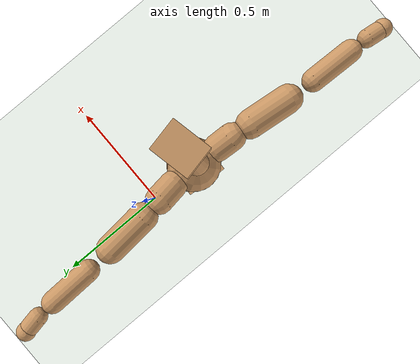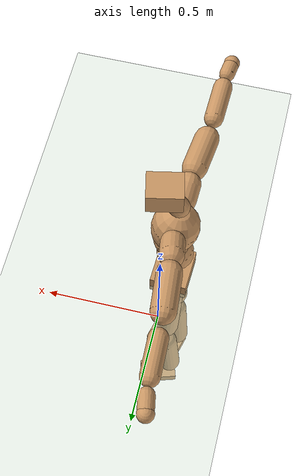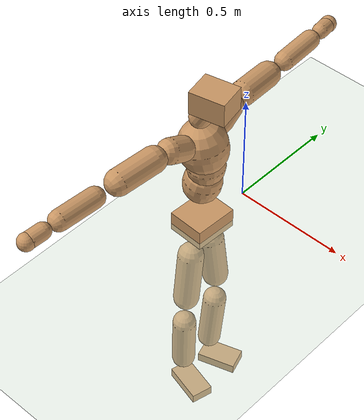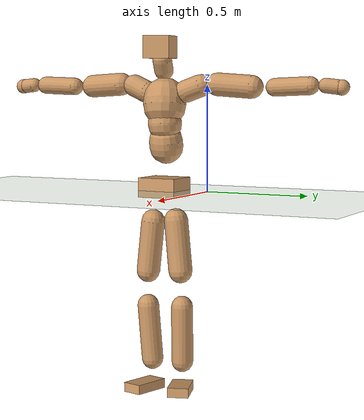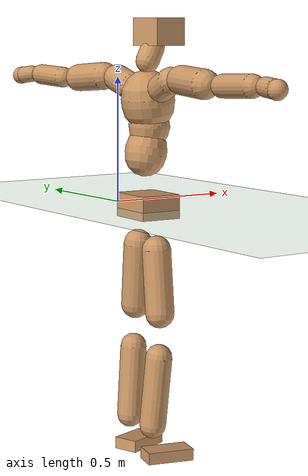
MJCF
<mujoco model="humanoid">
  <compiler coordinate="local" angle="radian"/>
  <default>
    <joint damping="0.0" armature="0.01" stiffness="0.0" limited="true"/>
    <geom conaffinity="1" condim="3" contype="7" margin="0.001" rgba="0.8 0.6 .4 1"/>
  </default>
  <asset>
    <texture type="skybox" builtin="gradient" rgb1=".4 .5 .6" rgb2="0 0 0" width="100" height="100"/>
    <texture builtin="flat" height="1278" mark="cross" markrgb="1 1 1" name="texgeom" random="0.01" rgb1="0.8 0.6 0.4" rgb2="0.8 0.6 0.4" type="cube" width="127"/>
    <texture builtin="checker" height="100" name="texplane" rgb1="0 0 0" rgb2="0.8 0.8 0.8" type="2d" width="100"/>
    <material name="MatPlane" reflectance="0.5" shininess="1" specular="1" texrepeat="60 60" texture="texplane"/>
    <material name="geom" texture="texgeom" texuniform="true"/>
  </asset>
  <worldbody>
    <light cutoff="100" diffuse="1 1 1" dir="-0 0 -1.3" directional="true" exponent="1" pos="0 0 1.3" specular=".1 .1 .1"/>
    <geom conaffinity="1" condim="3" name="floor" pos="0 0 0" rgba="0.8 0.9 0.8 1" size="100 100 .2" type="plane" material="MatPlane"/>
    <body name="Pelvis" pos="-0.0042 -0.2357 0.0204">
      <freejoint name="Pelvis"/>
      <geom type="box" contype="1" conaffinity="1" density="500" pos="-0.0105 0.0004 -0.0082" size="0.0826 0.0965 0.0466" quat="0.9998 0.0000 0.0000 -0.0207" name="Pelvis"/>
      <body name="L_Hip" pos="-0.0187 0.0516 -0.084">
        <joint name="L_Hip_x" type="hinge" pos="0 0 0" axis="1 0 0" stiffness="800" damping="80" armature="0.02" range="-180.0000 180.0000"/>
        <joint name="L_Hip_y" type="hinge" pos="0 0 0" axis="0 1 0" stiffness="800" damping="80" armature="0.02" range="-180.0000 180.0000"/>
        <joint name="L_Hip_z" type="hinge" pos="0 0 0" axis="0 0 1" stiffness="800" damping="80" armature="0.02" range="-180.0000 180.0000"/>
        <geom type="capsule" contype="1" conaffinity="1" density="500" fromto="0.0020 0.0089 -0.0821 0.0080 0.0356 -0.3284" size="0.0571" name="L_Hip"/>
        <body name="L_Knee" pos="0.0101 0.0446 -0.4105">
          <joint name="L_Knee_x" type="hinge" pos="0 0 0" axis="1 0 0" stiffness="800" damping="80" armature="0.02" range="-180.0000 180.0000"/>
          <joint name="L_Knee_y" type="hinge" pos="0 0 0" axis="0 1 0" stiffness="800" damping="80" armature="0.02" range="-180.0000 180.0000"/>
          <joint name="L_Knee_z" type="hinge" pos="0 0 0" axis="0 0 1" stiffness="800" damping="80" armature="0.02" range="-180.0000 180.0000"/>
          <geom type="capsule" contype="1" conaffinity="1" density="500" fromto="-0.0075 -0.0030 -0.0914 -0.0299 -0.0122 -0.3655" size="0.0521" name="L_Knee"/>
          <body name="L_Ankle" pos="-0.0374 -0.0152 -0.4569">
            <joint name="L_Ankle_x" type="hinge" pos="0 0 0" axis="1 0 0" stiffness="800" damping="80" armature="0.02" range="-180.0000 180.0000"/>
            <joint name="L_Ankle_y" type="hinge" pos="0 0 0" axis="0 1 0" stiffness="800" damping="80" armature="0.02" range="-180.0000 180.0000"/>
            <joint name="L_Ankle_z" type="hinge" pos="0 0 0" axis="0 0 1" stiffness="800" damping="80" armature="0.02" range="-180.0000 180.0000"/>
            <geom type="box" contype="1" conaffinity="1" density="500" pos="0.0625 0.0200 -0.0312" size="0.0886 0.0506 0.0231" quat="0.9880 0.0000 0.0000 0.1546" name="L_Ankle"/>
            <body name="L_Toe" pos="0.1249 0.0401 -0.0625">
              <joint name="L_Toe_x" type="hinge" pos="0 0 0" axis="1 0 0" stiffness="500" damping="50" armature="0.02" range="-180.0000 180.0000"/>
              <joint name="L_Toe_y" type="hinge" pos="0 0 0" axis="0 1 0" stiffness="500" damping="50" armature="0.02" range="-180.0000 180.0000"/>
              <joint name="L_Toe_z" type="hinge" pos="0 0 0" axis="0 0 1" stiffness="500" damping="50" armature="0.02" range="-180.0000 180.0000"/>
              <geom type="box" contype="1" conaffinity="1" density="500" pos="0.0000 0.0000 0.0308" size="0.0011 0.0025 0.0011" quat="0.9872 0.0000 0.0000 0.1593" name="L_Toe"/>
            </body>
          </body>
        </body>
      </body>
      <body name="R_Hip" pos="-0.0136 -0.0541 -0.0943">
        <joint name="R_Hip_x" type="hinge" pos="0 0 0" axis="1 0 0" stiffness="800" damping="80" armature="0.02" range="-180.0000 180.0000"/>
        <joint name="R_Hip_y" type="hinge" pos="0 0 0" axis="0 1 0" stiffness="800" damping="80" armature="0.02" range="-180.0000 180.0000"/>
        <joint name="R_Hip_z" type="hinge" pos="0 0 0" axis="0 0 1" stiffness="800" damping="80" armature="0.02" range="-180.0000 180.0000"/>
        <geom type="capsule" contype="1" conaffinity="1" density="500" fromto="-0.0008 -0.0092 -0.0818 -0.0031 -0.0369 -0.3273" size="0.0564" name="R_Hip"/>
        <body name="R_Knee" pos="-0.0039 -0.0461 -0.4091">
          <joint name="R_Knee_x" type="hinge" pos="0 0 0" axis="1 0 0" stiffness="800" damping="80" armature="0.02" range="-180.0000 180.0000"/>
          <joint name="R_Knee_y" type="hinge" pos="0 0 0" axis="0 1 0" stiffness="800" damping="80" armature="0.02" range="-180.0000 180.0000"/>
          <joint name="R_Knee_z" type="hinge" pos="0 0 0" axis="0 0 1" stiffness="800" damping="80" armature="0.02" range="-180.0000 180.0000"/>
          <geom type="capsule" contype="1" conaffinity="1" density="500" fromto="-0.0066 0.0042 -0.0903 -0.0265 0.0170 -0.3610" size="0.0521" name="R_Knee"/>
          <body name="R_Ankle" pos="-0.0332 0.0212 -0.4513">
            <joint name="R_Ankle_x" type="hinge" pos="0 0 0" axis="1 0 0" stiffness="800" damping="80" armature="0.02" range="-180.0000 180.0000"/>
            <joint name="R_Ankle_y" type="hinge" pos="0 0 0" axis="0 1 0" stiffness="800" damping="80" armature="0.02" range="-180.0000 180.0000"/>
            <joint name="R_Ankle_z" type="hinge" pos="0 0 0" axis="0 0 1" stiffness="800" damping="80" armature="0.02" range="-180.0000 180.0000"/>
            <geom type="box" contype="1" conaffinity="1" density="500" pos="0.0668 -0.0169 -0.0331" size="0.0926 0.0495 0.0229" quat="0.9924 0.0000 0.0000 -0.1234" name="R_Ankle"/>
            <body name="R_Toe" pos="0.1337 -0.0338 -0.0662">
              <joint name="R_Toe_x" type="hinge" pos="0 0 0" axis="1 0 0" stiffness="500" damping="50" armature="0.02" range="-180.0000 180.0000"/>
              <joint name="R_Toe_y" type="hinge" pos="0 0 0" axis="0 1 0" stiffness="500" damping="50" armature="0.02" range="-180.0000 180.0000"/>
              <joint name="R_Toe_z" type="hinge" pos="0 0 0" axis="0 0 1" stiffness="500" damping="50" armature="0.02" range="-180.0000 180.0000"/>
              <geom type="box" contype="1" conaffinity="1" density="500" pos="0.0000 0.0000 0.0332" size="0.0011 0.0024 0.0012" quat="0.9934 0.0000 0.0000 -0.1148" name="R_Toe"/>
            </body>
          </body>
        </body>
      </body>
      <body name="Torso" pos="-0.0305 0.005 0.1292">
        <joint name="Torso_x" type="hinge" pos="0 0 0" axis="1 0 0" stiffness="1000" damping="100" armature="0.02" range="-180.0000 180.0000"/>
        <joint name="Torso_y" type="hinge" pos="0 0 0" axis="0 1 0" stiffness="1000" damping="100" armature="0.02" range="-180.0000 180.0000"/>
        <joint name="Torso_z" type="hinge" pos="0 0 0" axis="0 0 1" stiffness="1000" damping="100" armature="0.02" range="-180.0000 180.0000"/>
        <geom type="capsule" contype="1" conaffinity="1" density="500" fromto="0.0179 0.0031 0.0848 0.0119 0.0021 0.0565" size="0.081" name="Torso"/>
        <body name="Spine" pos="0.0298 0.0052 0.1413">
          <joint name="Spine_x" type="hinge" pos="0 0 0" axis="1 0 0" stiffness="1000" damping="100" armature="0.02" range="-180.0000 180.0000"/>
          <joint name="Spine_y" type="hinge" pos="0 0 0" axis="0 1 0" stiffness="1000" damping="100" armature="0.02" range="-180.0000 180.0000"/>
          <joint name="Spine_z" type="hinge" pos="0 0 0" axis="0 0 1" stiffness="1000" damping="100" armature="0.02" range="-180.0000 180.0000"/>
          <geom type="capsule" contype="1" conaffinity="1" density="500" fromto="0.0017 -0.0012 0.0335 0.0011 -0.0008 0.0223" size="0.0805" name="Spine"/>
          <body name="Chest" pos="0.0028 -0.0021 0.0559">
            <joint name="Chest_x" type="hinge" pos="0 0 0" axis="1 0 0" stiffness="1000" damping="100" armature="0.02" range="-180.0000 180.0000"/>
            <joint name="Chest_y" type="hinge" pos="0 0 0" axis="0 1 0" stiffness="1000" damping="100" armature="0.02" range="-180.0000 180.0000"/>
            <joint name="Chest_z" type="hinge" pos="0 0 0" axis="0 0 1" stiffness="1000" damping="100" armature="0.02" range="-180.0000 180.0000"/>
            <geom type="capsule" contype="1" conaffinity="1" density="500" fromto="-0.0139 -0.0051 0.0858 -0.0092 -0.0034 0.0572" size="0.1031" name="Chest"/>
            <body name="Neck" pos="-0.0299 -0.0152 0.2044">
              <joint name="Neck_x" type="hinge" pos="0 0 0" axis="1 0 0" stiffness="500" damping="50" armature="0.02" range="-180.0000 180.0000"/>
              <joint name="Neck_y" type="hinge" pos="0 0 0" axis="0 1 0" stiffness="500" damping="50" armature="0.02" range="-180.0000 180.0000"/>
              <joint name="Neck_z" type="hinge" pos="0 0 0" axis="0 0 1" stiffness="500" damping="50" armature="0.02" range="-180.0000 180.0000"/>
              <geom type="capsule" contype="1" conaffinity="1" density="500" fromto="0.0094 0.0017 0.0168 0.0374 0.0067 0.0670" size="0.0455" name="Neck"/>
              <body name="Head" pos="0.0468 0.0084 0.0838">
                <joint name="Head_x" type="hinge" pos="0 0 0" axis="1 0 0" stiffness="500" damping="50" armature="0.02" range="-180.0000 180.0000"/>
                <joint name="Head_y" type="hinge" pos="0 0 0" axis="0 1 0" stiffness="500" damping="50" armature="0.02" range="-180.0000 180.0000"/>
                <joint name="Head_z" type="hinge" pos="0 0 0" axis="0 0 1" stiffness="500" damping="50" armature="0.02" range="-180.0000 180.0000"/>
                <geom type="box" contype="1" conaffinity="1" density="500" pos="0.0244 0.0052 0.0429" size="0.077 0.0626 0.0524" quat="0.9945 0.0000 0.0000 0.1051" name="Head"/>
              </body>
            </body>
            <body name="L_Thorax" pos="-0.0183 0.0758 0.1131">
              <joint name="L_Thorax_x" type="hinge" pos="0 0 0" axis="1 0 0" stiffness="500" damping="50" armature="0.02" range="-180.0000 180.0000"/>
              <joint name="L_Thorax_y" type="hinge" pos="0 0 0" axis="0 1 0" stiffness="500" damping="50" armature="0.02" range="-180.0000 180.0000"/>
              <joint name="L_Thorax_z" type="hinge" pos="0 0 0" axis="0 0 1" stiffness="500" damping="50" armature="0.02" range="-180.0000 180.0000"/>
              <geom type="capsule" contype="1" conaffinity="1" density="500" fromto="-0.0039 0.0251 0.0096 -0.0156 0.1003 0.0383" size="0.0532" name="L_Thorax"/>
              <body name="L_Shoulder" pos="-0.0196 0.1254 0.0479">
                <joint name="L_Shoulder_x" type="hinge" pos="0 0 0" axis="1 0 0" stiffness="500" damping="50" armature="0.02" range="-720.0000 720.0000"/>
                <joint name="L_Shoulder_y" type="hinge" pos="0 0 0" axis="0 1 0" stiffness="500" damping="50" armature="0.02" range="-720.0000 720.0000"/>
                <joint name="L_Shoulder_z" type="hinge" pos="0 0 0" axis="0 0 1" stiffness="500" damping="50" armature="0.02" range="-720.0000 720.0000"/>
                <geom type="capsule" contype="1" conaffinity="1" density="500" fromto="-0.0048 0.0562 -0.0039 -0.0190 0.2247 -0.0155" size="0.0544" name="L_Shoulder"/>
                <body name="L_Elbow" pos="-0.0238 0.2808 -0.0194">
                  <joint name="L_Elbow_x" type="hinge" pos="0 0 0" axis="1 0 0" stiffness="500" damping="50" armature="0.02" range="-720.0000 720.0000"/>
                  <joint name="L_Elbow_y" type="hinge" pos="0 0 0" axis="0 1 0" stiffness="500" damping="50" armature="0.02" range="-720.0000 720.0000"/>
                  <joint name="L_Elbow_z" type="hinge" pos="0 0 0" axis="0 0 1" stiffness="500" damping="50" armature="0.02" range="-720.0000 720.0000"/>
                  <geom type="capsule" contype="1" conaffinity="1" density="500" fromto="-0.0020 0.0566 0.0025 -0.0079 0.2262 0.0100" size="0.0419" name="L_Elbow"/>
                  <body name="L_Wrist" pos="-0.0099 0.2828 0.0125">
                    <joint name="L_Wrist_x" type="hinge" pos="0 0 0" axis="1 0 0" stiffness="300" damping="30" armature="0.02" range="-180.0000 180.0000"/>
                    <joint name="L_Wrist_y" type="hinge" pos="0 0 0" axis="0 1 0" stiffness="300" damping="30" armature="0.02" range="-180.0000 180.0000"/>
                    <joint name="L_Wrist_z" type="hinge" pos="0 0 0" axis="0 0 1" stiffness="300" damping="30" armature="0.02" range="-180.0000 180.0000"/>
                    <geom type="capsule" contype="1" conaffinity="1" density="500" fromto="-0.0032 0.0176 -0.0021 -0.0129 0.0704 -0.0082" size="0.0344" name="L_Wrist"/>
                    <body name="L_Hand" pos="-0.0161 0.0881 -0.0103">
                      <joint name="L_Hand_x" type="hinge" pos="0 0 0" axis="1 0 0" stiffness="300" damping="30" armature="0.02" range="-180.0000 180.0000"/>
                      <joint name="L_Hand_y" type="hinge" pos="0 0 0" axis="0 1 0" stiffness="300" damping="30" armature="0.02" range="-180.0000 180.0000"/>
                      <joint name="L_Hand_z" type="hinge" pos="0 0 0" axis="0 0 1" stiffness="300" damping="30" armature="0.02" range="-180.0000 180.0000"/>
                      <geom type="sphere" contype="1" conaffinity="1" density="500" size="0.0360" pos="0.0000 0.0000 0.0000" name="L_Hand"/>
                    </body>
                  </body>
                </body>
              </body>
            </body>
            <body name="R_Thorax" pos="-0.0211 -0.0859 0.1114">
              <joint name="R_Thorax_x" type="hinge" pos="0 0 0" axis="1 0 0" stiffness="500" damping="50" armature="0.02" range="-180.0000 180.0000"/>
              <joint name="R_Thorax_y" type="hinge" pos="0 0 0" axis="0 1 0" stiffness="500" damping="50" armature="0.02" range="-180.0000 180.0000"/>
              <joint name="R_Thorax_z" type="hinge" pos="0 0 0" axis="0 0 1" stiffness="500" damping="50" armature="0.02" range="-180.0000 180.0000"/>
              <geom type="capsule" contype="1" conaffinity="1" density="500" fromto="-0.0015 -0.0227 0.0097 -0.0061 -0.0906 0.0389" size="0.0527" name="R_Thorax"/>
              <body name="R_Shoulder" pos="-0.0077 -0.1133 0.0487">
                <joint name="R_Shoulder_x" type="hinge" pos="0 0 0" axis="1 0 0" stiffness="500" damping="50" armature="0.02" range="-720.0000 720.0000"/>
                <joint name="R_Shoulder_y" type="hinge" pos="0 0 0" axis="0 1 0" stiffness="500" damping="50" armature="0.02" range="-720.0000 720.0000"/>
                <joint name="R_Shoulder_z" type="hinge" pos="0 0 0" axis="0 0 1" stiffness="500" damping="50" armature="0.02" range="-720.0000 720.0000"/>
                <geom type="capsule" contype="1" conaffinity="1" density="500" fromto="-0.0060 -0.0559 -0.0034 -0.0241 -0.2234 -0.0135" size="0.0549" name="R_Shoulder"/>
                <body name="R_Elbow" pos="-0.0301 -0.2793 -0.0169">
                  <joint name="R_Elbow_x" type="hinge" pos="0 0 0" axis="1 0 0" stiffness="500" damping="50" armature="0.02" range="-720.0000 720.0000"/>
                  <joint name="R_Elbow_y" type="hinge" pos="0 0 0" axis="0 1 0" stiffness="500" damping="50" armature="0.02" range="-720.0000 720.0000"/>
                  <joint name="R_Elbow_z" type="hinge" pos="0 0 0" axis="0 0 1" stiffness="500" damping="50" armature="0.02" range="-720.0000 720.0000"/>
                  <geom type="capsule" contype="1" conaffinity="1" density="500" fromto="-0.0016 -0.0572 0.0019 -0.0065 -0.2289 0.0076" size="0.0426" name="R_Elbow"/>
                  <body name="R_Wrist" pos="-0.0081 -0.2861 0.0095">
                    <joint name="R_Wrist_x" type="hinge" pos="0 0 0" axis="1 0 0" stiffness="300" damping="30" armature="0.02" range="-180.0000 180.0000"/>
                    <joint name="R_Wrist_y" type="hinge" pos="0 0 0" axis="0 1 0" stiffness="300" damping="30" armature="0.02" range="-180.0000 180.0000"/>
                    <joint name="R_Wrist_z" type="hinge" pos="0 0 0" axis="0 0 1" stiffness="300" damping="30" armature="0.02" range="-180.0000 180.0000"/>
                    <geom type="capsule" contype="1" conaffinity="1" density="500" fromto="-0.0021 -0.0178 -0.0017 -0.0083 -0.0711 -0.0067" size="0.0346" name="R_Wrist"/>
                    <body name="R_Hand" pos="-0.0103 -0.0888 -0.0084">
                      <joint name="R_Hand_x" type="hinge" pos="0 0 0" axis="1 0 0" stiffness="300" damping="30" armature="0.02" range="-180.0000 180.0000"/>
                      <joint name="R_Hand_y" type="hinge" pos="0 0 0" axis="0 1 0" stiffness="300" damping="30" armature="0.02" range="-180.0000 180.0000"/>
                      <joint name="R_Hand_z" type="hinge" pos="0 0 0" axis="0 0 1" stiffness="300" damping="30" armature="0.02" range="-180.0000 180.0000"/>
                      <geom type="sphere" contype="1" conaffinity="1" density="500" size="0.0360" pos="0.0000 0.0000 0.0000" name="R_Hand"/>
                    </body>
                  </body>
                </body>
              </body>
            </body>
          </body>
        </body>
      </body>
    </body>
  </worldbody>
  <actuator>
    <motor name="L_Hip_x" joint="L_Hip_x" gear="500"/>
    <motor name="L_Hip_y" joint="L_Hip_y" gear="500"/>
    <motor name="L_Hip_z" joint="L_Hip_z" gear="500"/>
    <motor name="L_Knee_x" joint="L_Knee_x" gear="500"/>
    <motor name="L_Knee_y" joint="L_Knee_y" gear="500"/>
    <motor name="L_Knee_z" joint="L_Knee_z" gear="500"/>
    <motor name="L_Ankle_x" joint="L_Ankle_x" gear="500"/>
    <motor name="L_Ankle_y" joint="L_Ankle_y" gear="500"/>
    <motor name="L_Ankle_z" joint="L_Ankle_z" gear="500"/>
    <motor name="L_Toe_x" joint="L_Toe_x" gear="500"/>
    <motor name="L_Toe_y" joint="L_Toe_y" gear="500"/>
    <motor name="L_Toe_z" joint="L_Toe_z" gear="500"/>
    <motor name="R_Hip_x" joint="R_Hip_x" gear="500"/>
    <motor name="R_Hip_y" joint="R_Hip_y" gear="500"/>
    <motor name="R_Hip_z" joint="R_Hip_z" gear="500"/>
    <motor name="R_Knee_x" joint="R_Knee_x" gear="500"/>
    <motor name="R_Knee_y" joint="R_Knee_y" gear="500"/>
    <motor name="R_Knee_z" joint="R_Knee_z" gear="500"/>
    <motor name="R_Ankle_x" joint="R_Ankle_x" gear="500"/>
    <motor name="R_Ankle_y" joint="R_Ankle_y" gear="500"/>
    <motor name="R_Ankle_z" joint="R_Ankle_z" gear="500"/>
    <motor name="R_Toe_x" joint="R_Toe_x" gear="500"/>
    <motor name="R_Toe_y" joint="R_Toe_y" gear="500"/>
    <motor name="R_Toe_z" joint="R_Toe_z" gear="500"/>
    <motor name="Torso_x" joint="Torso_x" gear="500"/>
    <motor name="Torso_y" joint="Torso_y" gear="500"/>
    <motor name="Torso_z" joint="Torso_z" gear="500"/>
    <motor name="Spine_x" joint="Spine_x" gear="500"/>
    <motor name="Spine_y" joint="Spine_y" gear="500"/>
    <motor name="Spine_z" joint="Spine_z" gear="500"/>
    <motor name="Chest_x" joint="Chest_x" gear="500"/>
    <motor name="Chest_y" joint="Chest_y" gear="500"/>
    <motor name="Chest_z" joint="Chest_z" gear="500"/>
    <motor name="Neck_x" joint="Neck_x" gear="500"/>
    <motor name="Neck_y" joint="Neck_y" gear="500"/>
    <motor name="Neck_z" joint="Neck_z" gear="500"/>
    <motor name="Head_x" joint="Head_x" gear="500"/>
    <motor name="Head_y" joint="Head_y" gear="500"/>
    <motor name="Head_z" joint="Head_z" gear="500"/>
    <motor name="L_Thorax_x" joint="L_Thorax_x" gear="500"/>
    <motor name="L_Thorax_y" joint="L_Thorax_y" gear="500"/>
    <motor name="L_Thorax_z" joint="L_Thorax_z" gear="500"/>
    <motor name="L_Shoulder_x" joint="L_Shoulder_x" gear="500"/>
    <motor name="L_Shoulder_y" joint="L_Shoulder_y" gear="500"/>
    <motor name="L_Shoulder_z" joint="L_Shoulder_z" gear="500"/>
    <motor name="L_Elbow_x" joint="L_Elbow_x" gear="500"/>
    <motor name="L_Elbow_y" joint="L_Elbow_y" gear="500"/>
    <motor name="L_Elbow_z" joint="L_Elbow_z" gear="500"/>
    <motor name="L_Wrist_x" joint="L_Wrist_x" gear="500"/>
    <motor name="L_Wrist_y" joint="L_Wrist_y" gear="500"/>
    <motor name="L_Wrist_z" joint="L_Wrist_z" gear="500"/>
    <motor name="L_Hand_x" joint="L_Hand_x" gear="500"/>
    <motor name="L_Hand_y" joint="L_Hand_y" gear="500"/>
    <motor name="L_Hand_z" joint="L_Hand_z" gear="500"/>
    <motor name="R_Thorax_x" joint="R_Thorax_x" gear="500"/>
    <motor name="R_Thorax_y" joint="R_Thorax_y" gear="500"/>
    <motor name="R_Thorax_z" joint="R_Thorax_z" gear="500"/>
    <motor name="R_Shoulder_x" joint="R_Shoulder_x" gear="500"/>
    <motor name="R_Shoulder_y" joint="R_Shoulder_y" gear="500"/>
    <motor name="R_Shoulder_z" joint="R_Shoulder_z" gear="500"/>
    <motor name="R_Elbow_x" joint="R_Elbow_x" gear="500"/>
    <motor name="R_Elbow_y" joint="R_Elbow_y" gear="500"/>
    <motor name="R_Elbow_z" joint="R_Elbow_z" gear="500"/>
    <motor name="R_Wrist_x" joint="R_Wrist_x" gear="500"/>
    <motor name="R_Wrist_y" joint="R_Wrist_y" gear="500"/>
    <motor name="R_Wrist_z" joint="R_Wrist_z" gear="500"/>
    <motor name="R_Hand_x" joint="R_Hand_x" gear="500"/>
    <motor name="R_Hand_y" joint="R_Hand_y" gear="500"/>
    <motor name="R_Hand_z" joint="R_Hand_z" gear="500"/>
  </actuator>
  <contact>
    <exclude body1="Torso" body2="Chest"/>
    <exclude body1="Head" body2="Chest"/>
    <exclude body1="R_Knee" body2="R_Toe"/>
    <exclude body1="R_Knee" body2="L_Ankle"/>
    <exclude body1="R_Knee" body2="L_Toe"/>
    <exclude body1="L_Knee" body2="L_Toe"/>
    <exclude body1="L_Knee" body2="R_Ankle"/>
    <exclude body1="L_Knee" body2="R_Toe"/>
    <exclude body1="L_Shoulder" body2="Chest"/>
    <exclude body1="R_Shoulder" body2="Chest"/>
  </contact>
  <sensor/>
  <size njmax="700" nconmax="700"/>
</mujoco>
